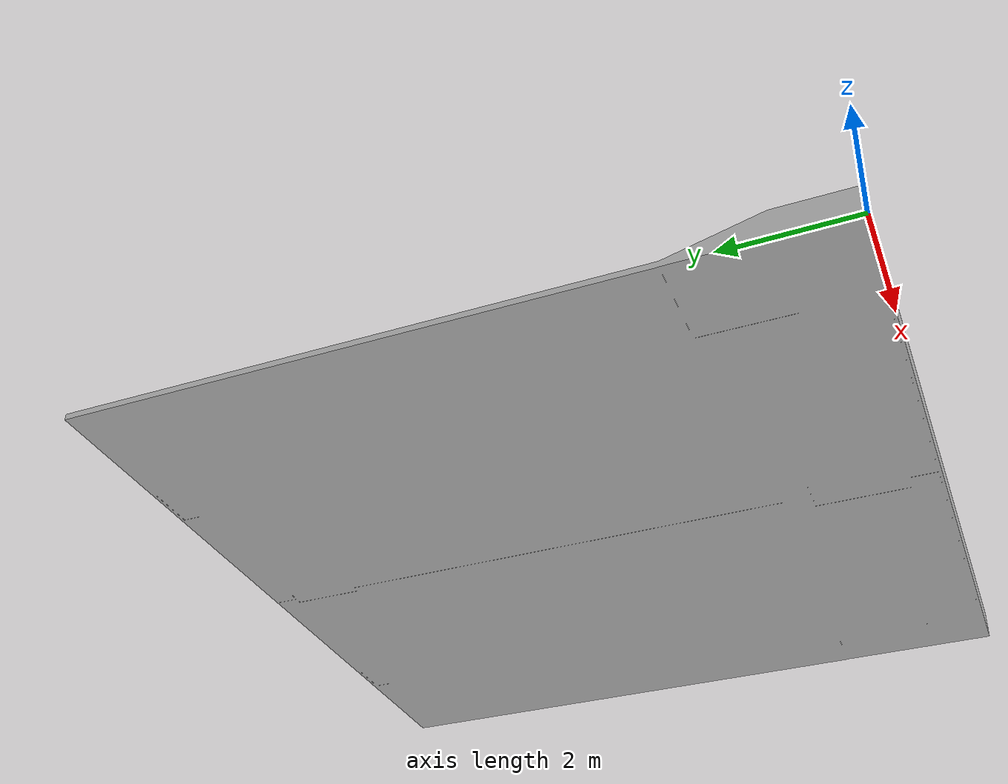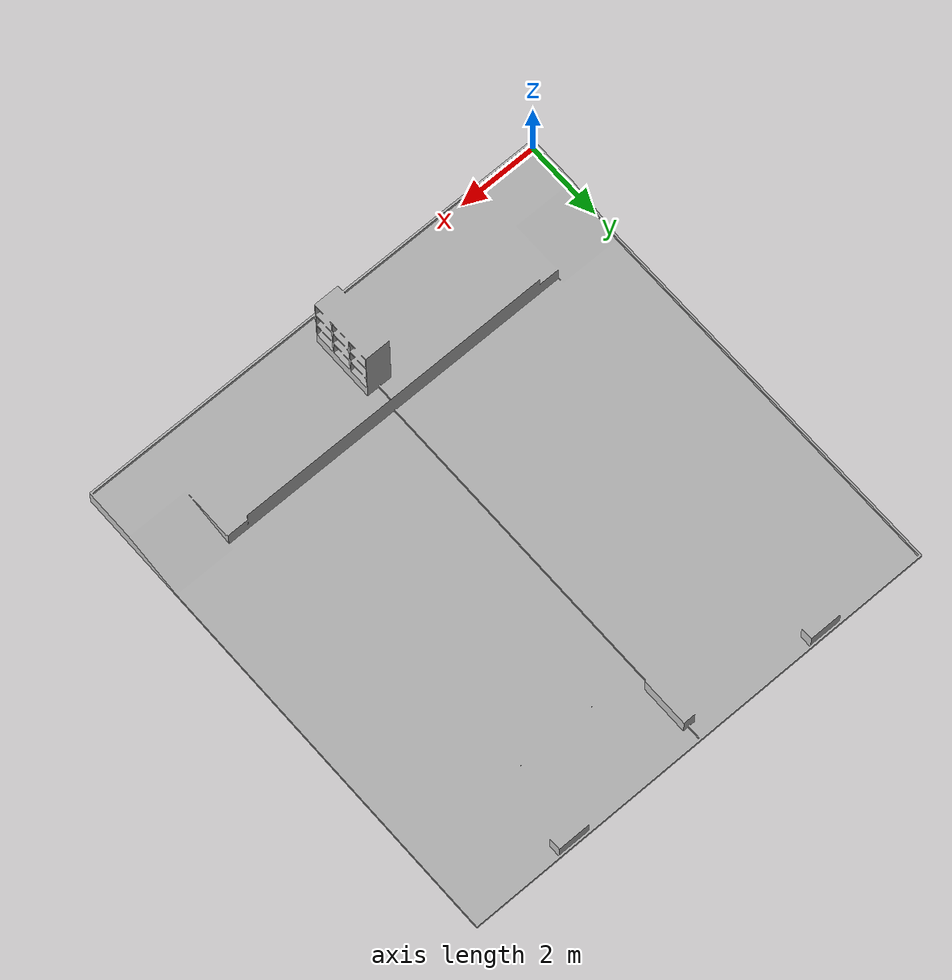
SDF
<?xml version="1.0" ?>
<sdf version="1.6">
  <model name="competition_field">
    <static>true</static>
    <link name="field_link">
      <collision name="collision">
        <geometry>
          <mesh>
            <uri>model://competition_field/meshes/world_no_forest.stl</uri>
            <scale>0.001 0.001 0.001</scale>
          </mesh>
        </geometry>
      </collision>
      <visual name="visual">
        <geometry>
          <mesh>
            <uri>model://competition_field/meshes/world_no_forest.stl</uri>
            <scale>0.001 0.001 0.001</scale>
          </mesh>
        </geometry>
      </visual>
    </link>
  </model>
</sdf>
